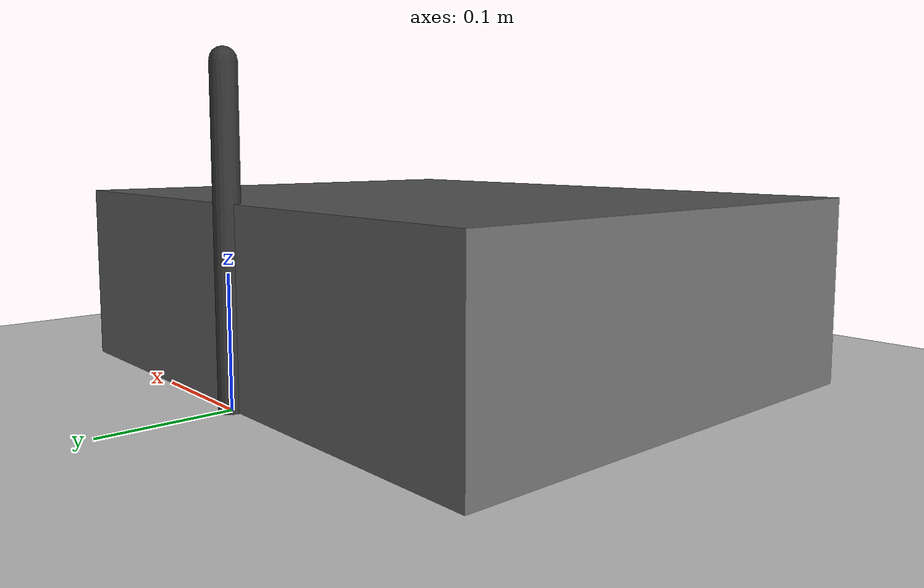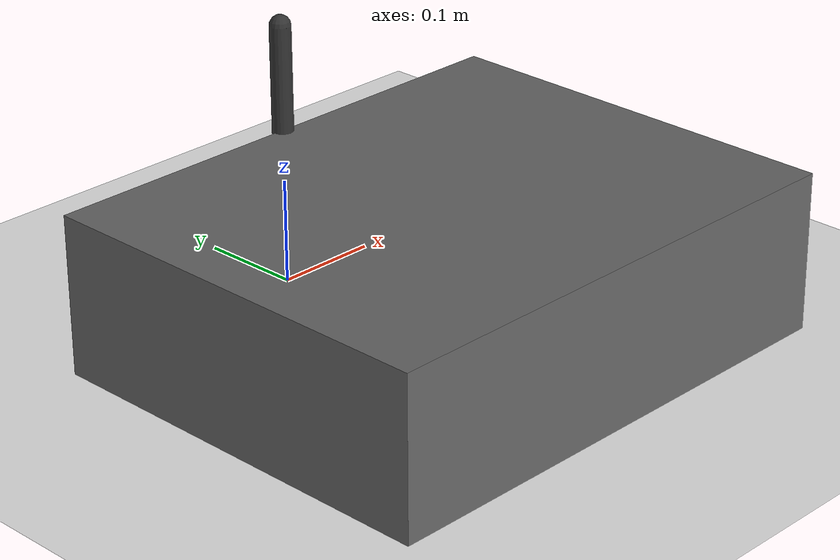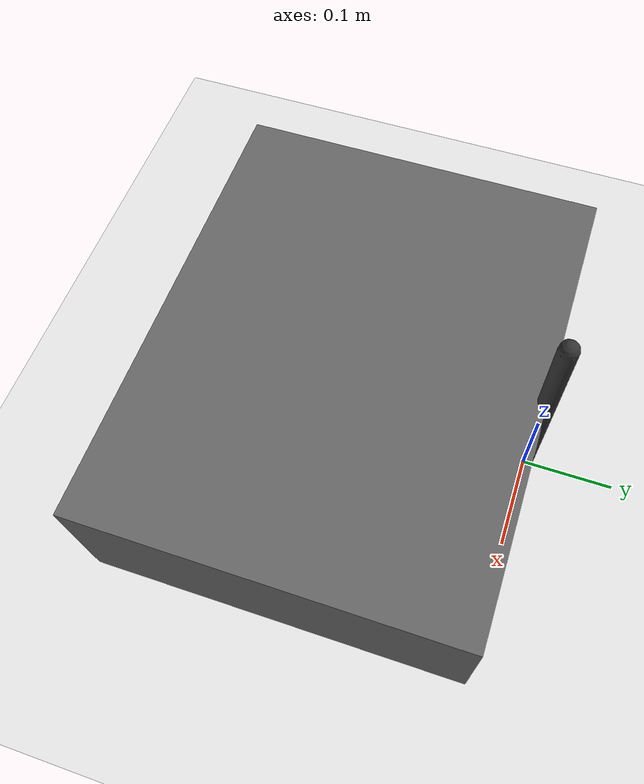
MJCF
<mujoco model="reacher">
	<asset>
		<texture builtin="gradient" height="256" rgb1=".9 .9 1." rgb2=".2 .3 .4" type="skybox" width="256"/>
		<texture name="texplane" builtin="checker" height="512" rgb1=".2 .3 .4" rgb2=".1 0.15 0.2" type="2d" width="512"/>
		<material name="floorplane" reflectance="0.5" texrepeat="1 1" texture="texplane" texuniform="true"/>
	</asset>
	<compiler angle="radian" inertiafromgeom="true"/>
	<default>
		<joint armature="1" damping="1" limited="true"/>
		<geom contype="0" friction="1 0.1 0.1" rgba="0.7 0.7 0 1"/>
	</default>
	<option gravity="0 0 -9.81" integrator="RK4" timestep="0.01"/>
	<worldbody>
		<!-- Arena -->
		<camera mode="fixed" name="robotview" pos="1.0 0 0.4" quat="0.653 0.271 0.271 0.653"/>
		<geom conaffinity="0" contype="0" material="floorplane" name="ground" pos="0 0 0" rgba="0.9 0.9 0.9 1" size="1 1 10" type="plane"/>
		<body name="table" pos="0 -0.2 0.075">
			<geom type="box" contype="1" size="0.25 0.2 0.075" rgba="0.4 0.4 0.4 1"/>
		</body>
		<light diffuse=".8 .8 .8" dir="0 -.15 -1" directional="false" pos="1 1 4.0" specular="0.3 0.3 0.3" castshadow="false"/>
    	<light diffuse=".8 .8 .8" dir="0 -.15 -1" directional="false" pos="-3. -3. 4.0" specular="0.3 0.3 0.3" castshadow="false"/>
		<body name="body0" pos="0 0 0">
			<geom conaffinity="2" contype="2" fromto="0 0 0 0 0 0.25" name="root" rgba="0.2 0.2 0.2 1" size=".01" type="capsule"/>
		</body>
		<!-- Particle -->
		<body name="fingertip" pos="0 0 0">
			<geom conaffinity="1" contype="1" name="fingertip" pos="0 0 0" rgba="0.1 0.4 0.9 1" size=".005" type="sphere"/>
			<joint axis="1 0 0" damping="0.1" name="sliderx" pos="0 0 0" type="slide" limited="true" range="-0.25 0.25"/>
			<joint axis="0 1 0" damping="0.1" name="slidery" pos="0 0 0" type="slide" limited="true" range="-0.4 0"/>
			<joint axis="0 0 1" damping="0.1" name="sliderz" pos="0 0 0" type="slide" limited="true" range="0.2 0.4"/>
		</body>
	</worldbody>
	<actuator>
		<velocity ctrllimited="true" ctrlrange="-1 1" gear="10" joint="sliderx"/>
		<velocity ctrllimited="true" ctrlrange="-1 1" gear="10" joint="slidery"/>
		<velocity ctrllimited="true" ctrlrange="-1 1" gear="10" joint="sliderz"/>
	</actuator>
</mujoco>
